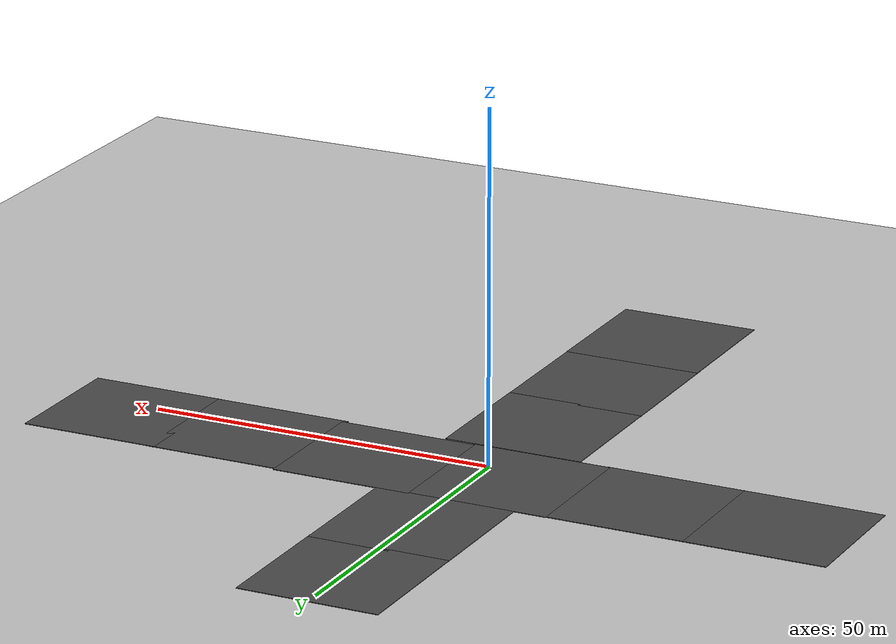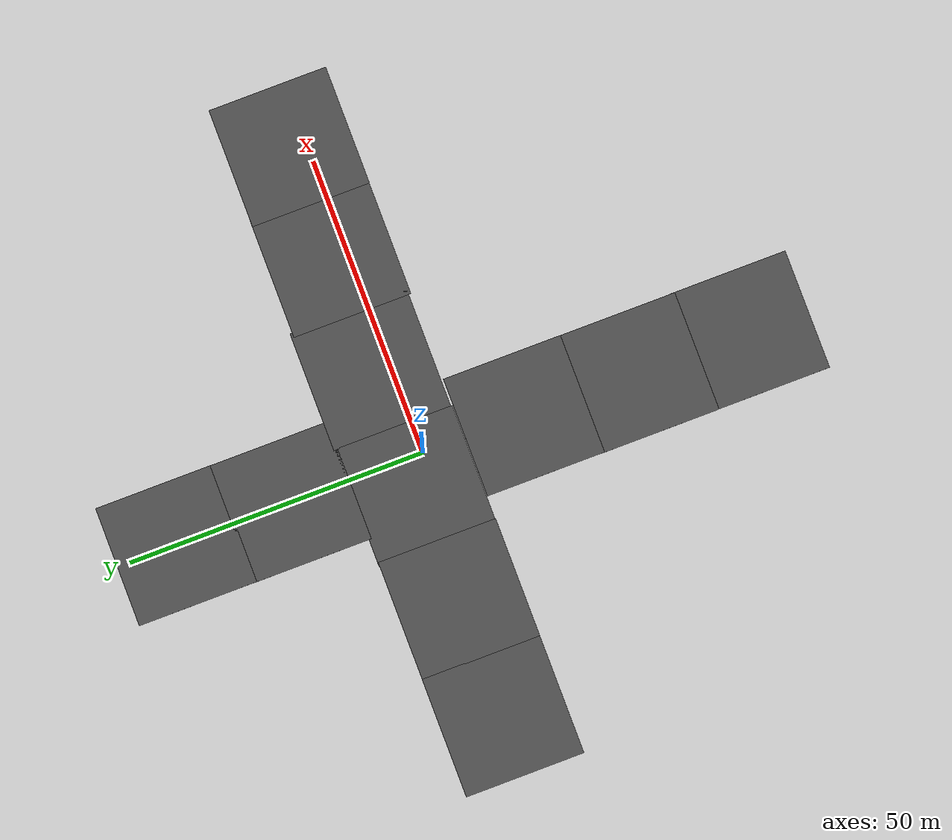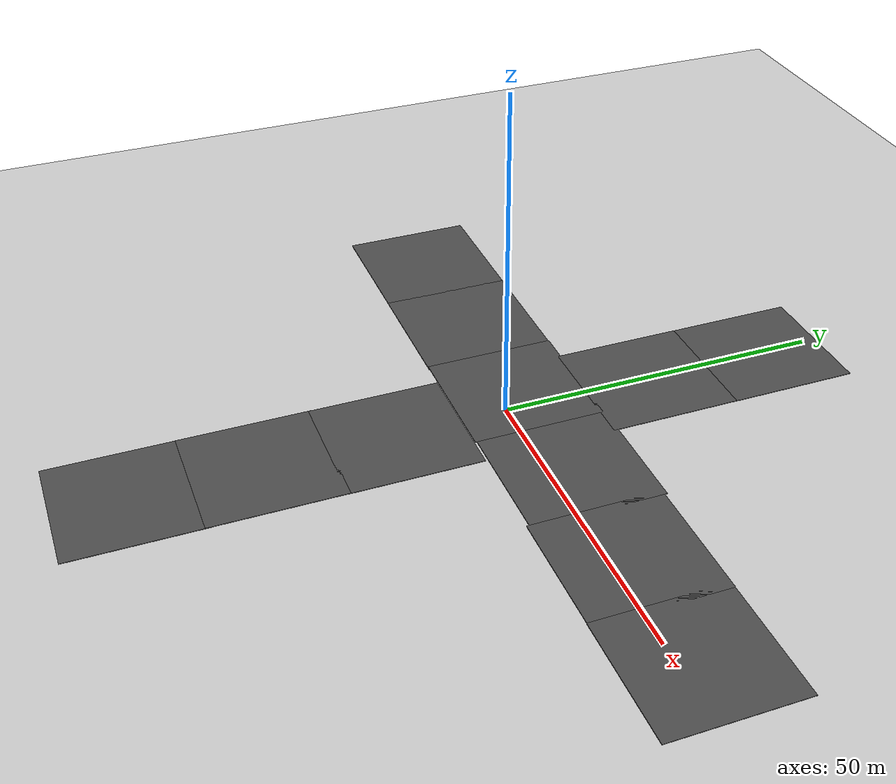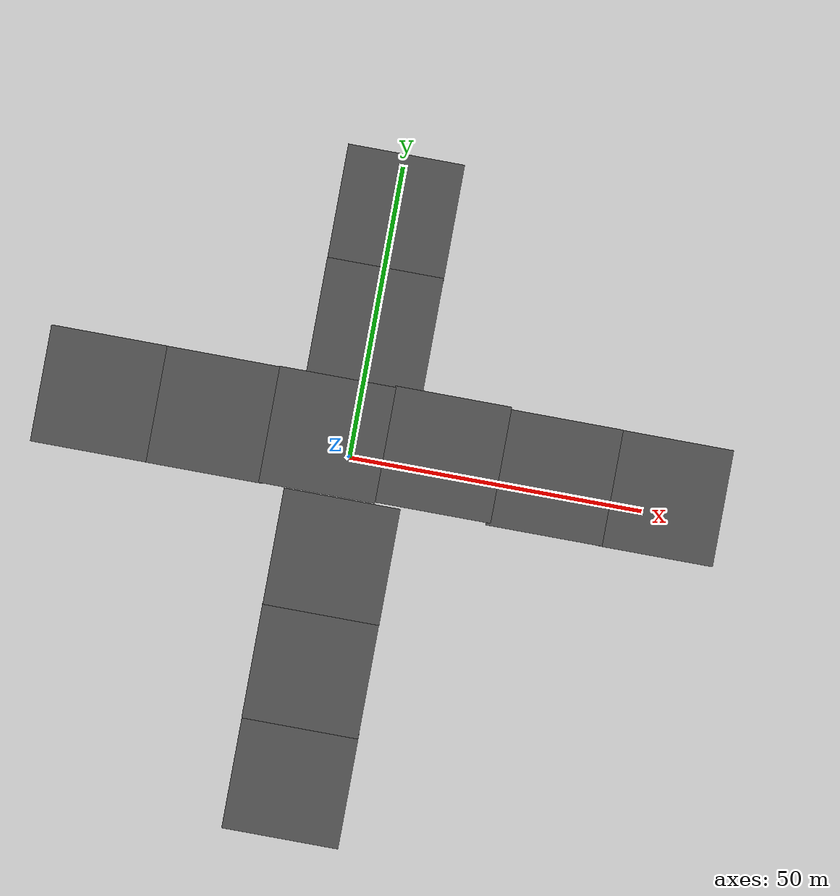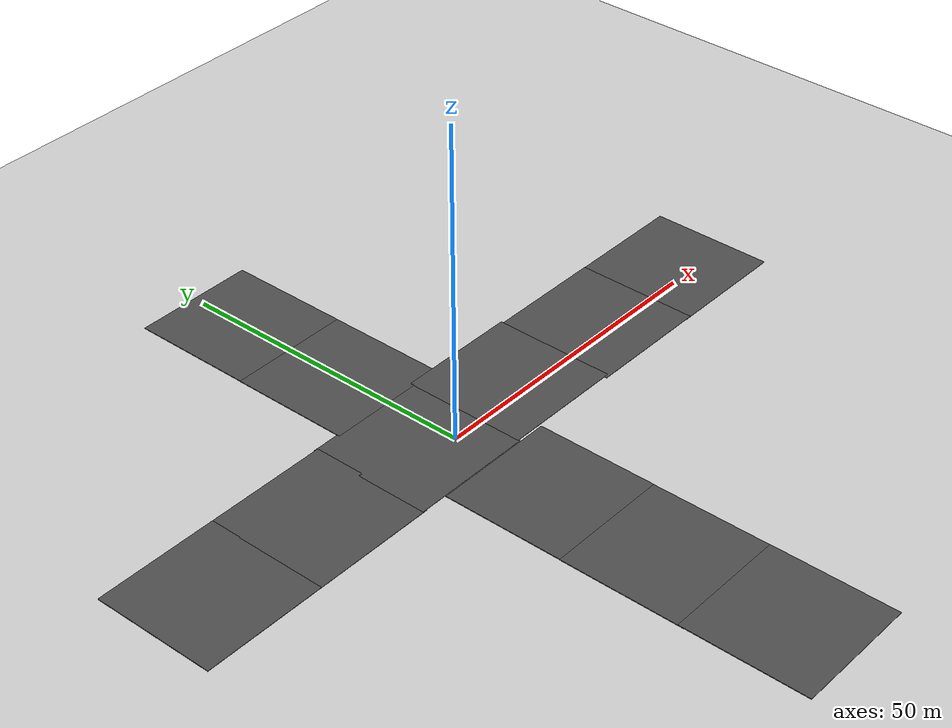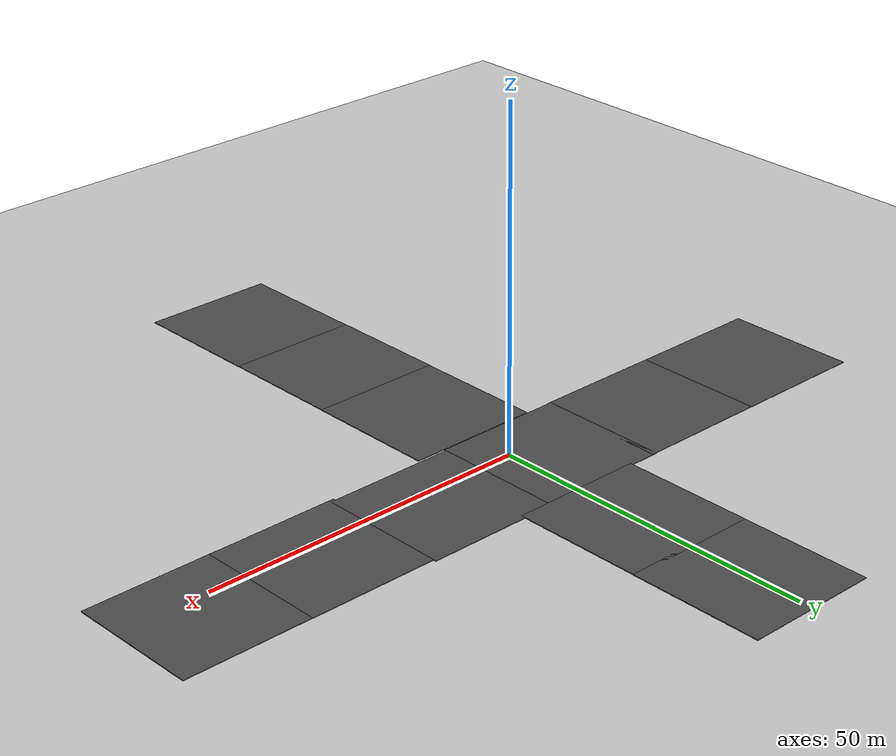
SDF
<sdf version="1.7">
 <world name="default">
  <light name="sun" type="directional">
   <pose>0 0 10 0 -0 0</pose>
   <diffuse>0.8 0.8 0.8 1</diffuse>
   <specular>0.2 0.2 0.2 1</specular>
   <attenuation>
    <range>1000</range>
    <constant>0.9</constant>
    <linear>0.01</linear>
    <quadratic>0.001</quadratic>
   </attenuation>
   <direction>-0.5 0.1 -0.9</direction>
   <spot><inner_angle>0</inner_angle><outer_angle>0</outer_angle><falloff>0</falloff></spot>
  </light>
  <model name="ground_plane">
   <static>1</static>
   <link name="link">
    <collision name="collision">
     <geometry><plane><normal>0 0 1</normal><size>100 100</size></plane></geometry>
     <surface>
      <contact><collide_bitmask>65535</collide_bitmask></contact>
      <friction><ode><mu>100</mu><mu2>50</mu2></ode></friction>
     </surface>
    </collision>
    <visual name="visual">
     <cast_shadows>0</cast_shadows>
     <geometry><plane><normal>0 0 1</normal><size>100 100</size></plane></geometry>
     <material>
      <script><uri>file://media/materials/scripts/gazebo.material</uri><name>Gazebo/Grey</name></script>
     </material>
    </visual>
   </link>
  </model>
  <gravity>0 0 -9.8</gravity>
  <magnetic_field>6e-06 2.3e-05 -4.2e-05</magnetic_field>
  <atmosphere type="adiabatic"/>
  <physics type="ode">
   <max_step_size>0.001</max_step_size>
   <real_time_factor>1</real_time_factor>
   <real_time_update_rate>1000</real_time_update_rate>
  </physics>
  <scene><ambient>0.4 0.4 0.4 1</ambient><background>0.7 0.7 0.7 1</background><shadows>1</shadows></scene>
  <spherical_coordinates>
   <surface_model>EARTH_WGS84</surface_model>
   <latitude_deg>0</latitude_deg>
   <longitude_deg>0</longitude_deg>
   <elevation>0</elevation>
   <heading_deg>0</heading_deg>
  </spherical_coordinates>
  <model name="asphalt_plane">
   <static>1</static>
   <link name="link">
    <collision name="collision"><geometry><box><size>20 20 0.1</size></box></geometry></collision>
    <visual name="visual">
     <cast_shadows>0</cast_shadows>
     <geometry><box><size>20 20 0.1</size></box></geometry>
     <material>
      <script>
       <uri>model://asphalt_plane/materials/scripts</uri>
       <uri>model://asphalt_plane/materials/textures</uri>
       <name>vrc/asphalt</name>
      </script>
     </material>
    </visual>
   </link>
   <pose>-4.50542 3.05375 0 0 -0 0</pose>
  </model>
  <model name="asphalt_plane_0">
   <static>1</static>
   <link name="link">
    <collision name="collision"><geometry><box><size>20 20 0.1</size></box></geometry></collision>
    <visual name="visual">
     <cast_shadows>0</cast_shadows>
     <geometry><box><size>20 20 0.1</size></box></geometry>
     <material>
      <script>
       <uri>model://asphalt_plane/materials/scripts</uri>
       <uri>model://asphalt_plane/materials/textures</uri>
       <name>vrc/asphalt</name>
      </script>
     </material>
    </visual>
   </link>
   <pose>15.3471 3.30232 0 0 -0 0</pose>
  </model>
  <model name="asphalt_plane_1">
   <static>1</static>
   <link name="link">
    <collision name="collision"><geometry><box><size>20 20 0.1</size></box></geometry></collision>
    <visual name="visual">
     <cast_shadows>0</cast_shadows>
     <geometry><box><size>20 20 0.1</size></box></geometry>
     <material>
      <script>
       <uri>model://asphalt_plane/materials/scripts</uri>
       <uri>model://asphalt_plane/materials/textures</uri>
       <name>vrc/asphalt</name>
      </script>
     </material>
    </visual>
   </link>
   <pose>-23.8642 2.95059 0 0 -0 0</pose>
  </model>
  <model name="asphalt_plane_2">
   <static>1</static>
   <link name="link">
    <collision name="collision"><geometry><box><size>20 20 0.1</size></box></geometry></collision>
    <visual name="visual">
     <cast_shadows>0</cast_shadows>
     <geometry><box><size>20 20 0.1</size></box></geometry>
     <material>
      <script>
       <uri>model://asphalt_plane/materials/scripts</uri>
       <uri>model://asphalt_plane/materials/textures</uri>
       <name>vrc/asphalt</name>
      </script>
     </material>
    </visual>
   </link>
   <pose>-43.7547 2.96361 0 0 -0 0</pose>
  </model>
  <model name="asphalt_plane_3">
   <static>1</static>
   <link name="link">
    <collision name="collision"><geometry><box><size>20 20 0.1</size></box></geometry></collision>
    <visual name="visual">
     <cast_shadows>0</cast_shadows>
     <geometry><box><size>20 20 0.1</size></box></geometry>
     <material>
      <script>
       <uri>model://asphalt_plane/materials/scripts</uri>
       <uri>model://asphalt_plane/materials/textures</uri>
       <name>vrc/asphalt</name>
      </script>
     </material>
    </visual>
   </link>
   <pose>34.5962 2.90355 0 0 -0 0</pose>
  </model>
  <model name="asphalt_plane_4">
   <static>1</static>
   <link name="link">
    <collision name="collision"><geometry><box><size>20 20 0.1</size></box></geometry></collision>
    <visual name="visual">
     <cast_shadows>0</cast_shadows>
     <geometry><box><size>20 20 0.1</size></box></geometry>
     <material>
      <script>
       <uri>model://asphalt_plane/materials/scripts</uri>
       <uri>model://asphalt_plane/materials/textures</uri>
       <name>vrc/asphalt</name>
      </script>
     </material>
    </visual>
   </link>
   <pose>53.5931 2.85543 0 0 -0 0</pose>
  </model>
  <model name="asphalt_plane_5">
   <static>1</static>
   <link name="link">
    <collision name="collision"><geometry><box><size>20 20 0.1</size></box></geometry></collision>
    <visual name="visual">
     <cast_shadows>0</cast_shadows>
     <geometry><box><size>20 20 0.1</size></box></geometry>
     <material>
      <script>
       <uri>model://asphalt_plane/materials/scripts</uri>
       <uri>model://asphalt_plane/materials/textures</uri>
       <name>vrc/asphalt</name>
      </script>
     </material>
    </visual>
   </link>
   <pose>0.071159 22.6365 0 0 -0 0</pose>
  </model>
  <model name="asphalt_plane_6">
   <static>1</static>
   <link name="link">
    <collision name="collision"><geometry><box><size>20 20 0.1</size></box></geometry></collision>
    <visual name="visual">
     <cast_shadows>0</cast_shadows>
     <geometry><box><size>20 20 0.1</size></box></geometry>
     <material>
      <script>
       <uri>model://asphalt_plane/materials/scripts</uri>
       <uri>model://asphalt_plane/materials/textures</uri>
       <name>vrc/asphalt</name>
      </script>
     </material>
    </visual>
   </link>
   <pose>0.10078 42.1315 0 0 -0 0</pose>
  </model>
  <model name="asphalt_plane_7">
   <static>1</static>
   <link name="link">
    <collision name="collision"><geometry><box><size>20 20 0.1</size></box></geometry></collision>
    <visual name="visual">
     <cast_shadows>0</cast_shadows>
     <geometry><box><size>20 20 0.1</size></box></geometry>
     <material>
      <script>
       <uri>model://asphalt_plane/materials/scripts</uri>
       <uri>model://asphalt_plane/materials/textures</uri>
       <name>vrc/asphalt</name>
      </script>
     </material>
    </visual>
   </link>
   <pose>-0.08285 -17.0966 0 0 -0 0</pose>
  </model>
  <model name="asphalt_plane_8">
   <static>1</static>
   <link name="link">
    <collision name="collision"><geometry><box><size>20 20 0.1</size></box></geometry></collision>
    <visual name="visual">
     <cast_shadows>0</cast_shadows>
     <geometry><box><size>20 20 0.1</size></box></geometry>
     <material>
      <script>
       <uri>model://asphalt_plane/materials/scripts</uri>
       <uri>model://asphalt_plane/materials/textures</uri>
       <name>vrc/asphalt</name>
      </script>
     </material>
    </visual>
   </link>
   <pose>-0.121572 -36.6477 0 0 -0 0</pose>
  </model>
  <model name="asphalt_plane_9">
   <static>1</static>
   <link name="link">
    <collision name="collision"><geometry><box><size>20 20 0.1</size></box></geometry></collision>
    <visual name="visual">
     <cast_shadows>0</cast_shadows>
     <geometry><box><size>20 20 0.1</size></box></geometry>
     <material>
      <script>
       <uri>model://asphalt_plane/materials/scripts</uri>
       <uri>model://asphalt_plane/materials/textures</uri>
       <name>vrc/asphalt</name>
      </script>
     </material>
    </visual>
   </link>
   <pose>-0.08176 -55.5672 0 0 -0 0</pose>
  </model>
 </world>
</sdf>
